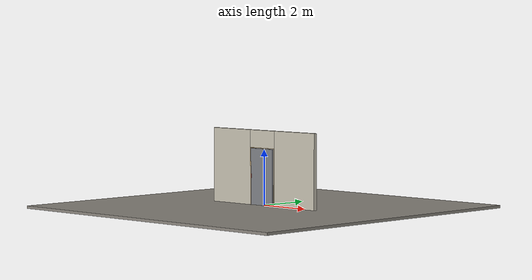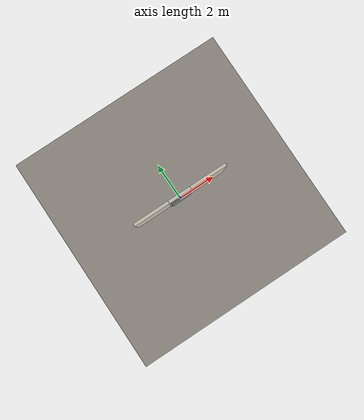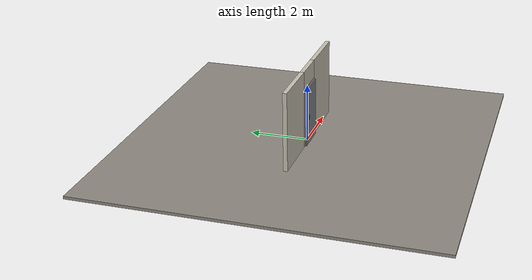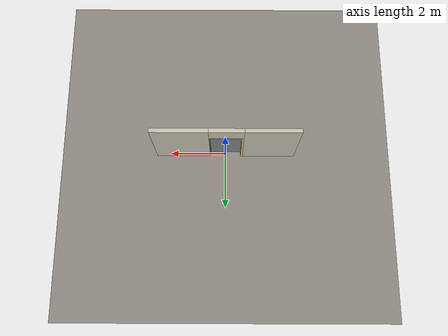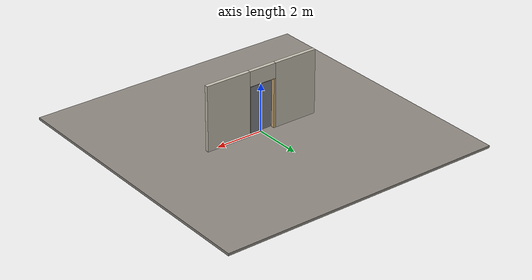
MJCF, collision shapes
<?xml version="1.0" ?>
<mujoco model="db0916_sliding_single_minimal">
  <compiler angle="radian" meshdir="../../hardware" texturedir="../../textures" autolimits="true" inertiafromgeom="false"/>
  <option timestep="0.002" integrator="implicitfast" cone="elliptic" impratio="10" noslip_iterations="3">
    <flag multiccd="enable"/>
  </option>
  <size memory="16M"/>
  <default>
    <geom condim="4" solref="0.005 1" solimp="0.95 0.99 0.001"/>
    <joint solreflimit="0.005 1" solimplimit="0.95 0.99 0.001"/>
    <tendon solreflimit="0.005 1"/>
    <equality solref="0.002 1"/>
  </default>
  <visual>
    <headlight ambient="0.4 0.4 0.4" diffuse="0.7 0.7 0.7" specular="0.2 0.2 0.2"/>
    <quality shadowsize="4096"/>
    <map znear="0.01" zfar="60"/>
  </visual>
  <asset>
    <mesh name="pull_1e5d69a91a" file="pull_1e5d69a91a.obj"/>
    <material name="mat_floor" rgba="0.55 0.53 0.5 1" specular="0.2" shininess="0.15" reflectance="0"/>
    <material name="mat_wall" rgba="0.78 0.76 0.7 1" specular="0.2" shininess="0.1" reflectance="0"/>
    <material name="mat_frame" rgba="0.82 0.7 0.5 1" specular="0.2" shininess="0.45" reflectance="0"/>
    <material name="mat_track" rgba="0.05 0.05 0.05 1" specular="0.38" shininess="0.3" reflectance="0.12"/>
    <material name="mat_leaf" rgba="0.5 0.51 0.53 1" specular="0.2" shininess="0.3" reflectance="0"/>
    <material name="mat_leaf_panel" rgba="0.46 0.469 0.488 1" specular="0.2" shininess="0.3" reflectance="0"/>
    <material name="mat_roller" rgba="0.65 0.66 0.68 1" specular="0.74" shininess="0.5" reflectance="0.36"/>
    <material name="mat_op_stainless" rgba="0.75 0.76 0.77 1" specular="0.8" shininess="0.65" reflectance="0.4"/>
    <material name="mat_hook" rgba="0.75 0.76 0.77 1" specular="0.8" shininess="0.65" reflectance="0.4"/>
    <texture name="skybox" type="skybox" builtin="gradient" rgb1="0.6 0.7 0.85" rgb2="0.9 0.92 0.95" width="256" height="256"/>
  </asset>
  <worldbody>
    <light name="sun" pos="1.5 -2.5 4" dir="-0.3 0.5 -0.8" directional="true" diffuse="0.8 0.8 0.8" specular="0.3 0.3 0.3" castshadow="true"/>
    <light name="fill" pos="-1.5 2.5 3" dir="0.3 -0.5 -0.7" directional="true" diffuse="0.35 0.35 0.4" castshadow="false"/>
    <camera name="robot_view" pos="0 -2.54875 1.73965" xyaxes="1 0 0 0 0.26963 0.962964" fovy="52"/>
    <camera name="far_view" pos="0 2.54875 1.73965" xyaxes="-1 0 0 0 -0.26963 0.962964" fovy="52"/>
    <camera name="iso" pos="1.93705 -2.14095 2.14745" xyaxes="0.741536 0.670913 0 -0.242917 0.268487 0.932151" fovy="46"/>
    <camera name="detail_handle" pos="-0.2635 -0.9965 1.33" xyaxes="0.97561 0.219512 0 -0.070934 0.315262 0.94635" fovy="38"/>
    <geom name="floor" type="box" size="6 6 0.05" pos="0 0 -0.05" material="mat_floor" group="0" contype="1" conaffinity="1" friction="0.8 0.005 0.0001" density="2400"/>
    <geom name="wall_left" type="box" size="0.93875 0.0725 1.35" pos="-1.56125 0 1.35" material="mat_wall" group="0" contype="1" conaffinity="1" friction="0.6 0.005 0.0001" density="800"/>
    <geom name="wall_right" type="box" size="0.96875 0.0725 1.35" pos="1.53125 0 1.35" material="mat_wall" group="0" contype="1" conaffinity="1" friction="0.6 0.005 0.0001" density="800"/>
    <geom name="wall_header" type="box" size="0.5925 0.0725 0.3145" pos="-0.03 0 2.3855" material="mat_wall" group="0" contype="1" conaffinity="1" friction="0.6 0.005 0.0001" density="800"/>
    <geom name="jamb_r" type="box" size="0.0095 0.0725 1.026" pos="0.553 0 1.026" material="mat_frame" group="0" contype="1" conaffinity="1" friction="0.6 0.005 0.0001" density="300"/>
    <geom name="jamb_head" type="box" size="0.5625 0.0725 0.0095" pos="0 0 2.0615" material="mat_frame" group="0" contype="1" conaffinity="1" friction="0.6 0.005 0.0001" density="300"/>
    <geom name="jamb_latch_0" type="box" size="0.0395 0.0725 1.026" pos="-0.583 0 1.026" material="mat_frame" group="0" contype="1" conaffinity="1" friction="0.6 0.005 0.0001" density="300"/>
    <site name="approach_point" pos="0 -1.5 0" quat="1 0 0 0" size="0.05" rgba="0.2 0.9 0.2 0.5" group="4"/>
    <site name="goal_point" pos="0 1.5 0" quat="1 0 0 0" size="0.05" rgba="0.2 0.9 0.2 0.5" group="4"/>
    <site name="door_plane_center" pos="0 0 1.026" quat="1 0 0 0" size="0.02" rgba="0.2 0.9 0.2 0.5" group="4"/>
    <body name="leaf" pos="0 -0.1145 0">
      <inertial pos="-0.00277 -0.000451 1.028137" mass="72.048752" quat="0.499409 0.500467 -0.499546 0.500576" diaginertia="6.894900894 24.651728322 31.518550458"/>
      <joint name="leaf_slide" type="slide" axis="1 0 0" limited="true" range="0 1.067" damping="5.602438" frictionloss="28.262276" armature="0.5"/>
      <geom name="leaf_slab" type="box" size="0.5335 0.022 1.016" pos="0 0 1.028" material="mat_leaf" group="0" contype="1" conaffinity="1" friction="0.4 0.005 0.0001" density="1"/>
      <geom name="leaf_pull_n" type="mesh" mesh="pull_1e5d69a91a" pos="-0.4435 -0.022 1.05" quat="0 0 -0.707107 0.707107" material="mat_op_stainless" group="1" contype="0" conaffinity="0" density="3000"/>
      <geom name="leaf_pull_col_n" type="capsule" size="0.0095 0.08" pos="-0.4435 -0.082 1.05" material="mat_op_stainless" group="3" contype="1" conaffinity="1" rgba="0.8 0.3 0.3 0.25" friction="0.7 0.01 0.0001" density="3000"/>
      <site name="leaf_pull_grip_n" pos="-0.4435 -0.082 1.05" quat="1 0 0 0" size="0.012" rgba="0.2 0.9 0.2 0.5" group="4"/>
      <site name="leaf_edge_mid" pos="-0.5335 0 1.028" quat="1 0 0 0" size="0.02" rgba="0.2 0.9 0.2 0.5" group="4"/>
    </body>
  </worldbody>
  <sensor>
    <jointpos name="leaf_slide_pos" joint="leaf_slide"/>
    <jointvel name="leaf_slide_vel" joint="leaf_slide"/>
  </sensor>
</mujoco>
